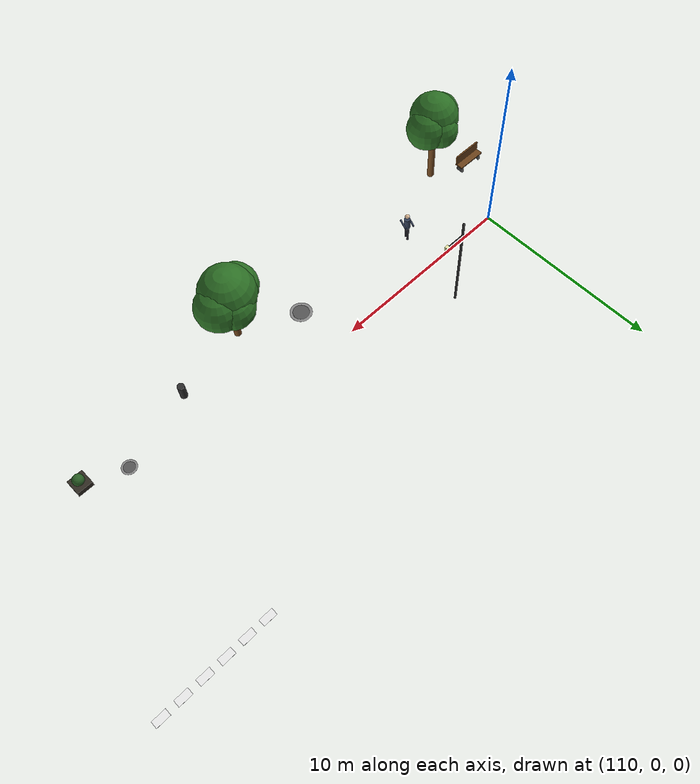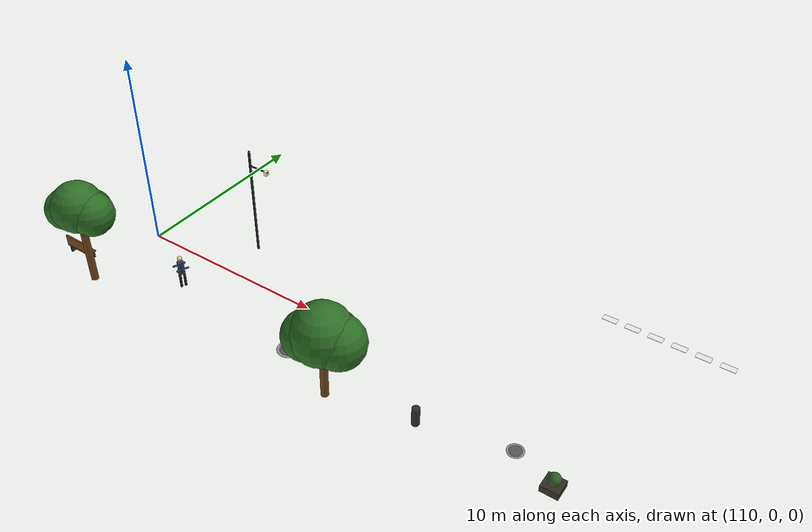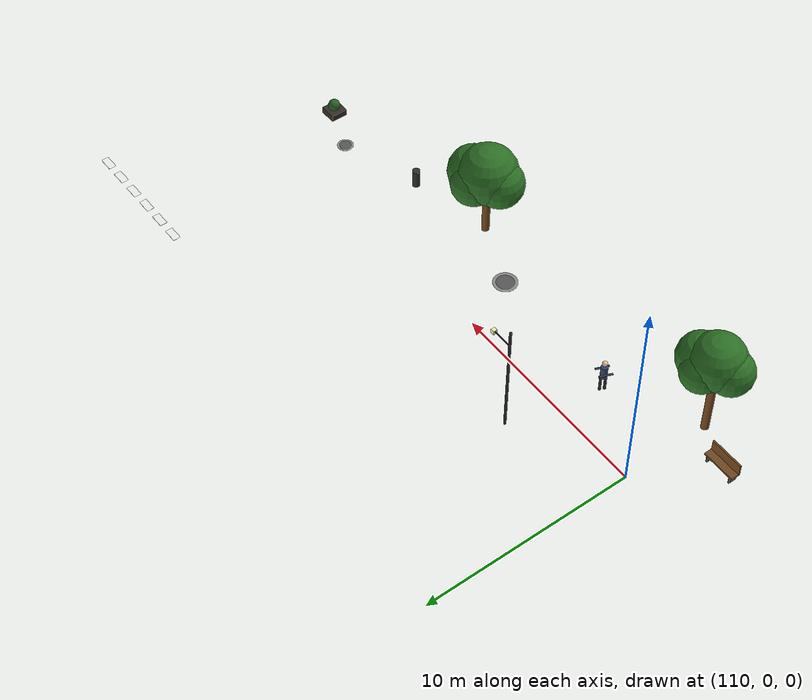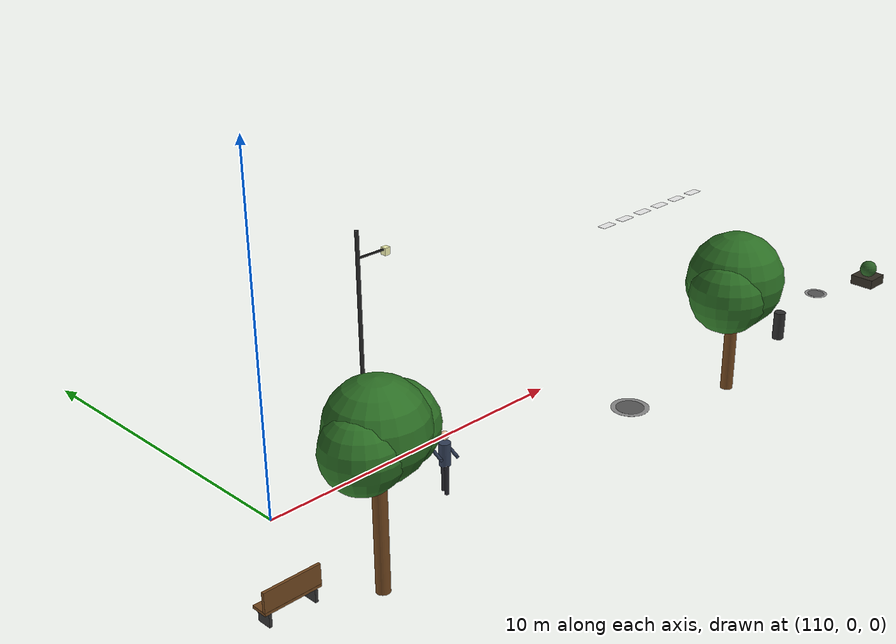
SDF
<sdf version="1.6">
 <world name="sidewalk_avenue">
  <model name="tree_9">
   <pose>110.000 -4.250 0.000 0.000 0.000 0.000</pose>
   <static>true</static>
   <link name="link">
    <collision name="cylinder_trunk_collision">
     <pose>0.000 0.000 1.900 0.000 0.000 0.000</pose>
     <geometry><cylinder><radius>0.180</radius><length>3.800</length></cylinder></geometry>
    </collision>
    <visual name="cylinder_trunk_visual">
     <pose>0.000 0.000 1.900 0.000 0.000 0.000</pose>
     <geometry><cylinder><radius>0.180</radius><length>3.800</length></cylinder></geometry>
     <material>
      <ambient>0.360 0.224 0.096 1.000</ambient>
      <diffuse>0.450 0.280 0.120 1.000</diffuse>
      <specular>0.050 0.050 0.050 1.000</specular>
     </material>
    </visual>
    <visual name="canopy_visual_0">
     <pose>0.000 0.000 4.280 0.000 0.000 0.000</pose>
     <geometry><sphere><radius>1.250</radius></sphere></geometry>
     <material>
      <ambient>0.144 0.360 0.120 1.000</ambient>
      <diffuse>0.180 0.450 0.150 1.000</diffuse>
      <specular>0.050 0.050 0.050 1.000</specular>
     </material>
    </visual>
    <visual name="canopy_visual_1">
     <pose>0.700 0.200 4.040 0.000 0.000 0.000</pose>
     <geometry><sphere><radius>1.062</radius></sphere></geometry>
     <material>
      <ambient>0.144 0.360 0.120 1.000</ambient>
      <diffuse>0.180 0.450 0.150 1.000</diffuse>
      <specular>0.050 0.050 0.050 1.000</specular>
     </material>
    </visual>
    <visual name="canopy_visual_2">
     <pose>-0.600 -0.200 4.040 0.000 0.000 0.000</pose>
     <geometry><sphere><radius>1.000</radius></sphere></geometry>
     <material>
      <ambient>0.144 0.360 0.120 1.000</ambient>
      <diffuse>0.180 0.450 0.150 1.000</diffuse>
      <specular>0.050 0.050 0.050 1.000</specular>
     </material>
    </visual>
    <visual name="canopy_visual_3">
     <pose>0.200 0.600 3.920 0.000 0.000 0.000</pose>
     <geometry><sphere><radius>0.938</radius></sphere></geometry>
     <material>
      <ambient>0.144 0.360 0.120 1.000</ambient>
      <diffuse>0.180 0.450 0.150 1.000</diffuse>
      <specular>0.050 0.050 0.050 1.000</specular>
     </material>
    </visual>
    <collision name="canopy_collision">
     <pose>0.000 0.000 4.160 0.000 0.000 0.000</pose>
     <geometry><sphere><radius>1.500</radius></sphere></geometry>
    </collision>
   </link>
   <plugin filename="gz-sim-label-system" name="gz::sim::systems::Label"><label>9</label></plugin>
  </model>
  <model name="tree_10">
   <pose>124.000 -3.850 0.000 0.000 0.000 0.000</pose>
   <static>true</static>
   <link name="link">
    <collision name="cylinder_trunk_collision">
     <pose>0.000 0.000 1.500 0.000 0.000 0.000</pose>
     <geometry><cylinder><radius>0.180</radius><length>3.000</length></cylinder></geometry>
    </collision>
    <visual name="cylinder_trunk_visual">
     <pose>0.000 0.000 1.500 0.000 0.000 0.000</pose>
     <geometry><cylinder><radius>0.180</radius><length>3.000</length></cylinder></geometry>
     <material>
      <ambient>0.360 0.224 0.096 1.000</ambient>
      <diffuse>0.450 0.280 0.120 1.000</diffuse>
      <specular>0.050 0.050 0.050 1.000</specular>
     </material>
    </visual>
    <visual name="canopy_visual_0">
     <pose>0.000 0.000 3.480 0.000 0.000 0.000</pose>
     <geometry><sphere><radius>1.400</radius></sphere></geometry>
     <material>
      <ambient>0.144 0.360 0.120 1.000</ambient>
      <diffuse>0.180 0.450 0.150 1.000</diffuse>
      <specular>0.050 0.050 0.050 1.000</specular>
     </material>
    </visual>
    <visual name="canopy_visual_1">
     <pose>0.700 0.200 3.240 0.000 0.000 0.000</pose>
     <geometry><sphere><radius>1.190</radius></sphere></geometry>
     <material>
      <ambient>0.144 0.360 0.120 1.000</ambient>
      <diffuse>0.180 0.450 0.150 1.000</diffuse>
      <specular>0.050 0.050 0.050 1.000</specular>
     </material>
    </visual>
    <visual name="canopy_visual_2">
     <pose>-0.600 -0.200 3.240 0.000 0.000 0.000</pose>
     <geometry><sphere><radius>1.120</radius></sphere></geometry>
     <material>
      <ambient>0.144 0.360 0.120 1.000</ambient>
      <diffuse>0.180 0.450 0.150 1.000</diffuse>
      <specular>0.050 0.050 0.050 1.000</specular>
     </material>
    </visual>
    <visual name="canopy_visual_3">
     <pose>0.200 0.600 3.120 0.000 0.000 0.000</pose>
     <geometry><sphere><radius>1.050</radius></sphere></geometry>
     <material>
      <ambient>0.144 0.360 0.120 1.000</ambient>
      <diffuse>0.180 0.450 0.150 1.000</diffuse>
      <specular>0.050 0.050 0.050 1.000</specular>
     </material>
    </visual>
    <collision name="canopy_collision">
     <pose>0.000 0.000 3.360 0.000 0.000 0.000</pose>
     <geometry><sphere><radius>1.680</radius></sphere></geometry>
    </collision>
   </link>
   <plugin filename="gz-sim-label-system" name="gz::sim::systems::Label"><label>9</label></plugin>
  </model>
  <model name="lamp_5">
   <pose>115.000 2.200 0.000 0.000 0.000 0.000</pose>
   <static>true</static>
   <link name="link">
    <collision name="pole_collision">
     <pose>0.000 0.000 2.900 0.000 0.000 0.000</pose>
     <geometry><cylinder><radius>0.060</radius><length>5.800</length></cylinder></geometry>
    </collision>
    <visual name="pole_visual">
     <pose>0.000 0.000 2.900 0.000 0.000 0.000</pose>
     <geometry><cylinder><radius>0.060</radius><length>5.800</length></cylinder></geometry>
     <material>
      <ambient>0.120 0.120 0.120 1.000</ambient>
      <diffuse>0.150 0.150 0.150 1.000</diffuse>
      <specular>0.050 0.050 0.050 1.000</specular>
     </material>
    </visual>
    <visual name="arm_visual">
     <pose>0.550 0.000 5.000 0.000 0.000 0.000</pose>
     <geometry><box><size>1.100 0.050 0.050</size></box></geometry>
     <material>
      <ambient>0.120 0.120 0.120 1.000</ambient>
      <diffuse>0.150 0.150 0.150 1.000</diffuse>
      <specular>0.050 0.050 0.050 1.000</specular>
     </material>
    </visual>
    <visual name="lamp_visual">
     <pose>1.000 0.000 4.950 0.000 0.000 0.000</pose>
     <geometry><box><size>0.180 0.180 0.220</size></box></geometry>
     <material>
      <ambient>0.760 0.760 0.560 1.000</ambient>
      <diffuse>0.950 0.950 0.700 1.000</diffuse>
      <specular>0.050 0.050 0.050 1.000</specular>
     </material>
    </visual>
   </link>
   <plugin filename="gz-sim-label-system" name="gz::sim::systems::Label"><label>6</label></plugin>
  </model>
  <model name="bench_3">
   <pose>108.000 -3.300 0.000 0.000 0.000 0.000</pose>
   <static>true</static>
   <link name="link">
    <collision name="seat_collision">
     <pose>0.000 0.000 0.420 0.000 0.000 0.000</pose>
     <geometry><box><size>1.600 0.450 0.080</size></box></geometry>
    </collision>
    <visual name="seat_visual">
     <pose>0.000 0.000 0.420 0.000 0.000 0.000</pose>
     <geometry><box><size>1.600 0.450 0.080</size></box></geometry>
     <material>
      <ambient>0.360 0.224 0.096 1.000</ambient>
      <diffuse>0.450 0.280 0.120 1.000</diffuse>
      <specular>0.050 0.050 0.050 1.000</specular>
     </material>
    </visual>
    <collision name="back_collision">
     <pose>0.000 -0.180 0.720 0.000 0.000 0.000</pose>
     <geometry><box><size>1.600 0.080 0.550</size></box></geometry>
    </collision>
    <visual name="back_visual">
     <pose>0.000 -0.180 0.720 0.000 0.000 0.000</pose>
     <geometry><box><size>1.600 0.080 0.550</size></box></geometry>
     <material>
      <ambient>0.360 0.224 0.096 1.000</ambient>
      <diffuse>0.450 0.280 0.120 1.000</diffuse>
      <specular>0.050 0.050 0.050 1.000</specular>
     </material>
    </visual>
    <collision name="leg1_collision">
     <pose>-0.650 0.000 0.225 0.000 0.000 0.000</pose>
     <geometry><box><size>0.080 0.400 0.450</size></box></geometry>
    </collision>
    <visual name="leg1_visual">
     <pose>-0.650 0.000 0.225 0.000 0.000 0.000</pose>
     <geometry><box><size>0.080 0.400 0.450</size></box></geometry>
     <material>
      <ambient>0.160 0.160 0.160 1.000</ambient>
      <diffuse>0.200 0.200 0.200 1.000</diffuse>
      <specular>0.050 0.050 0.050 1.000</specular>
     </material>
    </visual>
    <collision name="leg2_collision">
     <pose>0.650 0.000 0.225 0.000 0.000 0.000</pose>
     <geometry><box><size>0.080 0.400 0.450</size></box></geometry>
    </collision>
    <visual name="leg2_visual">
     <pose>0.650 0.000 0.225 0.000 0.000 0.000</pose>
     <geometry><box><size>0.080 0.400 0.450</size></box></geometry>
     <material>
      <ambient>0.160 0.160 0.160 1.000</ambient>
      <diffuse>0.200 0.200 0.200 1.000</diffuse>
      <specular>0.050 0.050 0.050 1.000</specular>
     </material>
    </visual>
   </link>
   <plugin filename="gz-sim-label-system" name="gz::sim::systems::Label"><label>3</label></plugin>
  </model>
  <model name="trash_4">
   <pose>128.000 -3.000 0.000 0.000 0.000 0.000</pose>
   <static>true</static>
   <link name="link">
    <collision name="bin_collision">
     <pose>0.000 0.000 0.450 0.000 0.000 0.000</pose>
     <geometry><cylinder><radius>0.180</radius><length>0.900</length></cylinder></geometry>
    </collision>
    <visual name="bin_visual">
     <pose>0.000 0.000 0.450 0.000 0.000 0.000</pose>
     <geometry><cylinder><radius>0.180</radius><length>0.900</length></cylinder></geometry>
     <material>
      <ambient>0.144 0.144 0.144 1.000</ambient>
      <diffuse>0.180 0.180 0.180 1.000</diffuse>
      <specular>0.050 0.050 0.050 1.000</specular>
     </material>
    </visual>
   </link>
   <plugin filename="gz-sim-label-system" name="gz::sim::systems::Label"><label>3</label></plugin>
  </model>
  <model name="person_4">
   <pose>114.000 -2.150 0.000 0.000 0.000 1.200</pose>
   <static>true</static>
   <link name="link">
    <collision name="leg0_collision">
     <pose>-0.110 0.000 0.430 0.000 0.000 0.000</pose>
     <geometry><cylinder><radius>0.060</radius><length>0.860</length></cylinder></geometry>
    </collision>
    <visual name="leg0_visual">
     <pose>-0.110 0.000 0.430 0.000 0.000 0.000</pose>
     <geometry><cylinder><radius>0.060</radius><length>0.860</length></cylinder></geometry>
     <material>
      <ambient>0.120 0.120 0.144 1.000</ambient>
      <diffuse>0.150 0.150 0.180 1.000</diffuse>
      <specular>0.050 0.050 0.050 1.000</specular>
     </material>
    </visual>
    <collision name="leg1_collision">
     <pose>0.110 0.000 0.430 0.000 0.000 0.000</pose>
     <geometry><cylinder><radius>0.060</radius><length>0.860</length></cylinder></geometry>
    </collision>
    <visual name="leg1_visual">
     <pose>0.110 0.000 0.430 0.000 0.000 0.000</pose>
     <geometry><cylinder><radius>0.060</radius><length>0.860</length></cylinder></geometry>
     <material>
      <ambient>0.120 0.120 0.144 1.000</ambient>
      <diffuse>0.150 0.150 0.180 1.000</diffuse>
      <specular>0.050 0.050 0.050 1.000</specular>
     </material>
    </visual>
    <collision name="torso_collision">
     <pose>0.000 0.000 1.150 0.000 0.000 0.000</pose>
     <geometry><cylinder><radius>0.160</radius><length>0.650</length></cylinder></geometry>
    </collision>
    <visual name="torso_visual">
     <pose>0.000 0.000 1.150 0.000 0.000 0.000</pose>
     <geometry><cylinder><radius>0.160</radius><length>0.650</length></cylinder></geometry>
     <material>
      <ambient>0.160 0.200 0.280 1.000</ambient>
      <diffuse>0.200 0.250 0.350 1.000</diffuse>
      <specular>0.050 0.050 0.050 1.000</specular>
     </material>
    </visual>
    <collision name="head_collision">
     <pose>0.000 0.000 1.680 0.000 0.000 0.000</pose>
     <geometry><sphere><radius>0.120</radius></sphere></geometry>
    </collision>
    <visual name="head_visual">
     <pose>0.000 0.000 1.680 0.000 0.000 0.000</pose>
     <geometry><sphere><radius>0.120</radius></sphere></geometry>
     <material>
      <ambient>0.760 0.640 0.520 1.000</ambient>
      <diffuse>0.950 0.800 0.650 1.000</diffuse>
      <specular>0.050 0.050 0.050 1.000</specular>
     </material>
    </visual>
    <collision name="arm0_collision">
     <pose>0.000 -0.220 1.160 0.000 1.571 0.000</pose>
     <geometry><cylinder><radius>0.045</radius><length>0.620</length></cylinder></geometry>
    </collision>
    <visual name="arm0_visual">
     <pose>0.000 -0.220 1.160 0.000 1.571 0.000</pose>
     <geometry><cylinder><radius>0.045</radius><length>0.620</length></cylinder></geometry>
     <material>
      <ambient>0.160 0.200 0.280 1.000</ambient>
      <diffuse>0.200 0.250 0.350 1.000</diffuse>
      <specular>0.050 0.050 0.050 1.000</specular>
     </material>
    </visual>
    <collision name="arm1_collision">
     <pose>0.000 0.220 1.160 0.000 1.571 0.000</pose>
     <geometry><cylinder><radius>0.045</radius><length>0.620</length></cylinder></geometry>
    </collision>
    <visual name="arm1_visual">
     <pose>0.000 0.220 1.160 0.000 1.571 0.000</pose>
     <geometry><cylinder><radius>0.045</radius><length>0.620</length></cylinder></geometry>
     <material>
      <ambient>0.160 0.200 0.280 1.000</ambient>
      <diffuse>0.200 0.250 0.350 1.000</diffuse>
      <specular>0.050 0.050 0.050 1.000</specular>
     </material>
    </visual>
   </link>
   <plugin filename="gz-sim-label-system" name="gz::sim::systems::Label"><label>12</label></plugin>
  </model>
  <model name="pothole_6">
   <pose>121.000 -2.600 0.000 0.000 0.000 0.000</pose>
   <static>true</static>
   <link name="link">
    <visual name="visual">
     <pose>0.000 0.000 -0.018 0.000 0.000 0.000</pose>
     <geometry><cylinder><radius>0.420</radius><length>0.010</length></cylinder></geometry>
     <material>
      <ambient>0.280 0.280 0.280 1.000</ambient>
      <diffuse>0.350 0.350 0.350 1.000</diffuse>
      <specular>0.050 0.050 0.050 1.000</specular>
     </material>
    </visual>
    <visual name="visual_patch">
     <pose>0.000 0.000 -0.016 0.000 0.000 0.000</pose>
     <geometry><cylinder><radius>0.567</radius><length>0.004</length></cylinder></geometry>
     <material>
      <ambient>0.440 0.440 0.440 1.000</ambient>
      <diffuse>0.550 0.550 0.550 1.000</diffuse>
      <specular>0.050 0.050 0.050 1.000</specular>
     </material>
    </visual>
   </link>
   <plugin filename="gz-sim-label-system" name="gz::sim::systems::Label"><label>1</label></plugin>
  </model>
  <model name="pothole_7">
   <pose>132.000 -1.900 0.000 0.000 0.000 0.000</pose>
   <static>true</static>
   <link name="link">
    <visual name="visual">
     <pose>0.000 0.000 -0.018 0.000 0.000 0.000</pose>
     <geometry><cylinder><radius>0.280</radius><length>0.010</length></cylinder></geometry>
     <material>
      <ambient>0.280 0.280 0.280 1.000</ambient>
      <diffuse>0.350 0.350 0.350 1.000</diffuse>
      <specular>0.050 0.050 0.050 1.000</specular>
     </material>
    </visual>
    <visual name="visual_patch">
     <pose>0.000 0.000 -0.016 0.000 0.000 0.000</pose>
     <geometry><cylinder><radius>0.378</radius><length>0.004</length></cylinder></geometry>
     <material>
      <ambient>0.440 0.440 0.440 1.000</ambient>
      <diffuse>0.550 0.550 0.550 1.000</diffuse>
      <specular>0.050 0.050 0.050 1.000</specular>
     </material>
    </visual>
   </link>
   <plugin filename="gz-sim-label-system" name="gz::sim::systems::Label"><label>1</label></plugin>
  </model>
  <model name="planter_5">
   <pose>134.000 -2.700 0.160 0.000 0.000 0.000</pose>
   <static>true</static>
   <link name="link">
    <collision name="collision"><geometry><box><size>0.800 0.800 0.320</size></box></geometry></collision>
    <visual name="visual">
     <geometry><box><size>0.800 0.800 0.320</size></box></geometry>
     <material>
      <ambient>0.160 0.144 0.112 1.000</ambient>
      <diffuse>0.200 0.180 0.140 1.000</diffuse>
      <specular>0.050 0.050 0.050 1.000</specular>
     </material>
    </visual>
   </link>
   <plugin filename="gz-sim-label-system" name="gz::sim::systems::Label"><label>3</label></plugin>
  </model>
  <model name="shrub_5">
   <pose>134.000 -2.700 0.550 0.000 0.000 0.000</pose>
   <static>true</static>
   <link name="link">
    <collision name="collision"><geometry><sphere><radius>0.280</radius></sphere></geometry></collision>
    <visual name="visual">
     <geometry><sphere><radius>0.280</radius></sphere></geometry>
     <material>
      <ambient>0.136 0.304 0.120 1.000</ambient>
      <diffuse>0.170 0.380 0.150 1.000</diffuse>
      <specular>0.050 0.050 0.050 1.000</specular>
     </material>
    </visual>
   </link>
   <plugin filename="gz-sim-label-system" name="gz::sim::systems::Label"><label>9</label></plugin>
  </model>
  <model name="crosswalk_1">
   <pose>132.000 7.500 0.011 0.000 0.000 0.000</pose>
   <static>true</static>
   <link name="link">
    <collision name="collision"><geometry><box><size>0.700 0.350 0.012</size></box></geometry></collision>
    <visual name="visual">
     <geometry><box><size>0.700 0.350 0.012</size></box></geometry>
     <material>
      <ambient>0.760 0.760 0.760 1.000</ambient>
      <diffuse>0.950 0.950 0.950 1.000</diffuse>
      <specular>0.050 0.050 0.050 1.000</specular>
     </material>
    </visual>
   </link>
   <plugin filename="gz-sim-label-system" name="gz::sim::systems::Label"><label>1</label></plugin>
  </model>
  <model name="crosswalk_2">
   <pose>133.100 7.500 0.011 0.000 0.000 0.000</pose>
   <static>true</static>
   <link name="link">
    <collision name="collision"><geometry><box><size>0.700 0.350 0.012</size></box></geometry></collision>
    <visual name="visual">
     <geometry><box><size>0.700 0.350 0.012</size></box></geometry>
     <material>
      <ambient>0.760 0.760 0.760 1.000</ambient>
      <diffuse>0.950 0.950 0.950 1.000</diffuse>
      <specular>0.050 0.050 0.050 1.000</specular>
     </material>
    </visual>
   </link>
   <plugin filename="gz-sim-label-system" name="gz::sim::systems::Label"><label>1</label></plugin>
  </model>
  <model name="crosswalk_3">
   <pose>134.200 7.500 0.011 0.000 0.000 0.000</pose>
   <static>true</static>
   <link name="link">
    <collision name="collision"><geometry><box><size>0.700 0.350 0.012</size></box></geometry></collision>
    <visual name="visual">
     <geometry><box><size>0.700 0.350 0.012</size></box></geometry>
     <material>
      <ambient>0.760 0.760 0.760 1.000</ambient>
      <diffuse>0.950 0.950 0.950 1.000</diffuse>
      <specular>0.050 0.050 0.050 1.000</specular>
     </material>
    </visual>
   </link>
   <plugin filename="gz-sim-label-system" name="gz::sim::systems::Label"><label>1</label></plugin>
  </model>
  <model name="crosswalk_4">
   <pose>135.300 7.500 0.011 0.000 0.000 0.000</pose>
   <static>true</static>
   <link name="link">
    <collision name="collision"><geometry><box><size>0.700 0.350 0.012</size></box></geometry></collision>
    <visual name="visual">
     <geometry><box><size>0.700 0.350 0.012</size></box></geometry>
     <material>
      <ambient>0.760 0.760 0.760 1.000</ambient>
      <diffuse>0.950 0.950 0.950 1.000</diffuse>
      <specular>0.050 0.050 0.050 1.000</specular>
     </material>
    </visual>
   </link>
   <plugin filename="gz-sim-label-system" name="gz::sim::systems::Label"><label>1</label></plugin>
  </model>
  <model name="crosswalk_5">
   <pose>136.400 7.500 0.011 0.000 0.000 0.000</pose>
   <static>true</static>
   <link name="link">
    <collision name="collision"><geometry><box><size>0.700 0.350 0.012</size></box></geometry></collision>
    <visual name="visual">
     <geometry><box><size>0.700 0.350 0.012</size></box></geometry>
     <material>
      <ambient>0.760 0.760 0.760 1.000</ambient>
      <diffuse>0.950 0.950 0.950 1.000</diffuse>
      <specular>0.050 0.050 0.050 1.000</specular>
     </material>
    </visual>
   </link>
   <plugin filename="gz-sim-label-system" name="gz::sim::systems::Label"><label>1</label></plugin>
  </model>
  <model name="crosswalk_6">
   <pose>137.500 7.500 0.011 0.000 0.000 0.000</pose>
   <static>true</static>
   <link name="link">
    <collision name="collision"><geometry><box><size>0.700 0.350 0.012</size></box></geometry></collision>
    <visual name="visual">
     <geometry><box><size>0.700 0.350 0.012</size></box></geometry>
     <material>
      <ambient>0.760 0.760 0.760 1.000</ambient>
      <diffuse>0.950 0.950 0.950 1.000</diffuse>
      <specular>0.050 0.050 0.050 1.000</specular>
     </material>
    </visual>
   </link>
   <plugin filename="gz-sim-label-system" name="gz::sim::systems::Label"><label>1</label></plugin>
  </model>
 </world>
</sdf>
